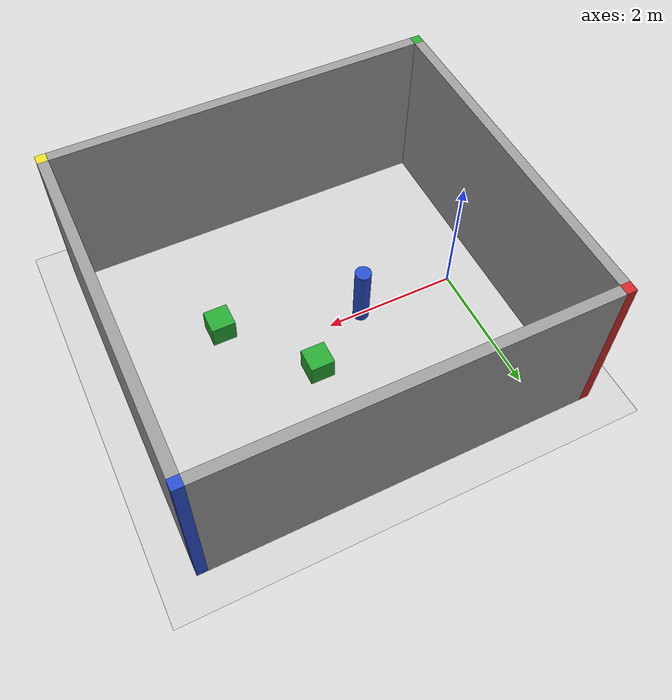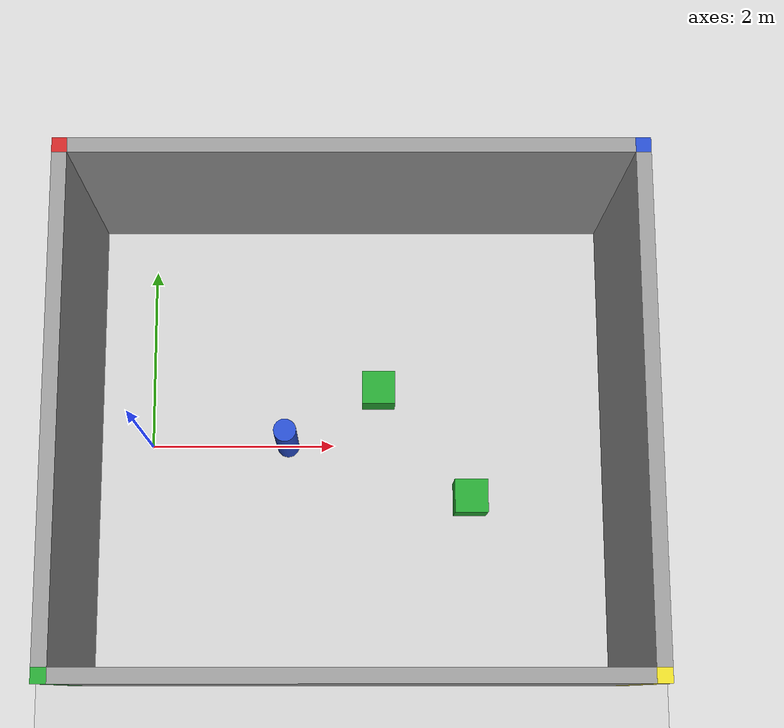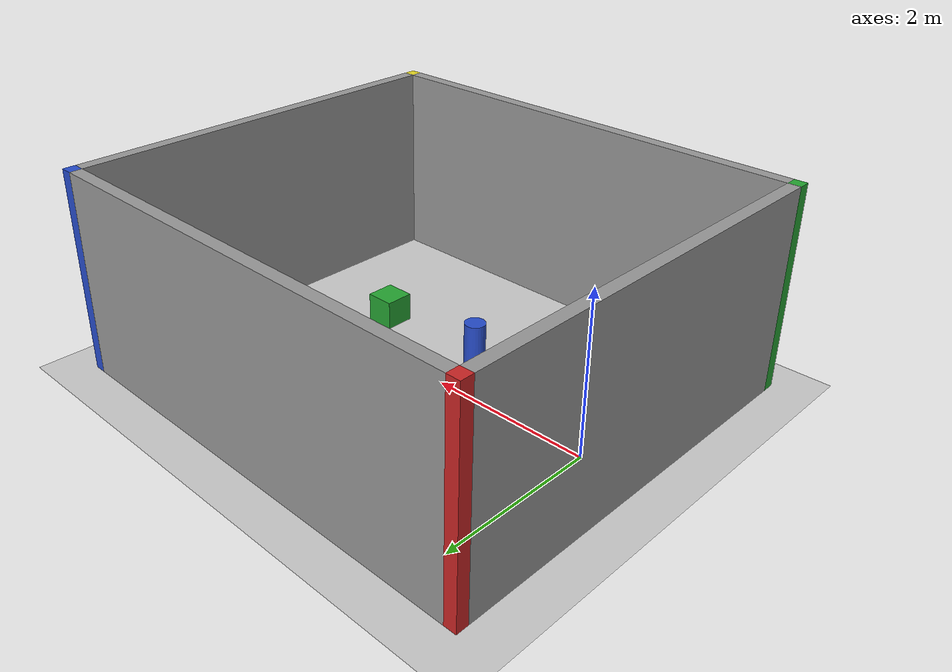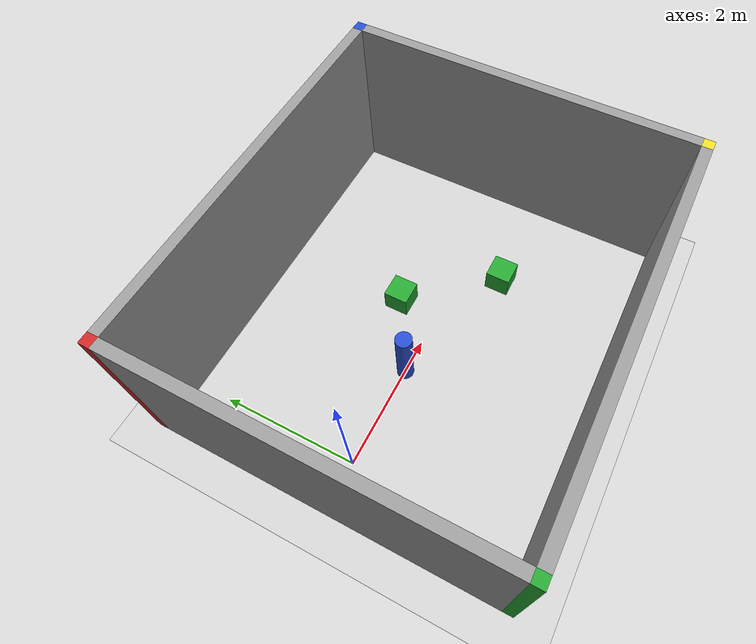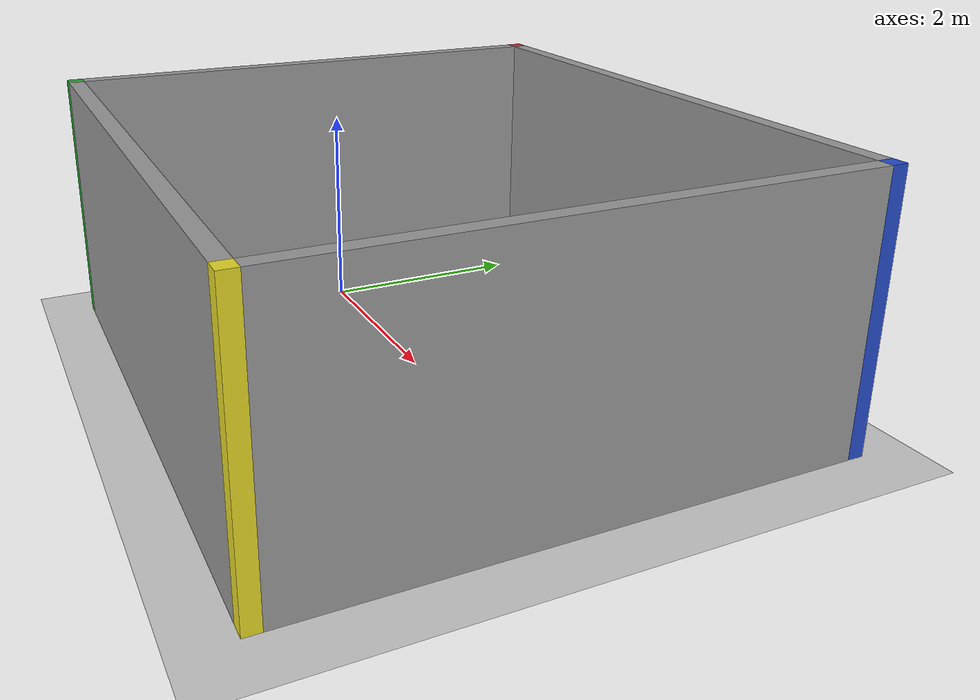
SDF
<sdf version='1.7'>
  <world name='default'>
    <light name='sun' type='directional'>
      <cast_shadows>1</cast_shadows>
      <pose>0 0 10 0 -0 0</pose>
      <diffuse>0.8 0.8 0.8 1</diffuse>
      <specular>0.2 0.2 0.2 1</specular>
      <attenuation>
        <range>1000</range>
        <constant>0.9</constant>
        <linear>0.01</linear>
        <quadratic>0.001</quadratic>
      </attenuation>
      <direction>-0.5 0.1 -0.9</direction>
      <spot>
        <inner_angle>0</inner_angle>
        <outer_angle>0</outer_angle>
        <falloff>0</falloff>
      </spot>
    </light>
    <model name='ground_plane'>
      <static>1</static>
      <link name='link'>
        <collision name='collision'>
          <geometry>
            <plane>
              <normal>0 0 1</normal>
              <size>100 100</size>
            </plane>
          </geometry>
          <surface>
            <contact>
              <collide_bitmask>65535</collide_bitmask>
              <ode/>
            </contact>
            <friction>
              <ode>
                <mu>100</mu>
                <mu2>50</mu2>
              </ode>
              <torsional>
                <ode/>
              </torsional>
            </friction>
            <bounce/>
          </surface>
          <max_contacts>10</max_contacts>
        </collision>
        <visual name='visual'>
          <cast_shadows>0</cast_shadows>
          <geometry>
            <plane>
              <normal>0 0 1</normal>
              <size>100 100</size>
            </plane>
          </geometry>
          <material>
            <script>
              <uri>file://media/materials/scripts/gazebo.material</uri>
              <name>Gazebo/FlatBeige</name>
            </script>
          </material>
        </visual>
        <self_collide>0</self_collide>
        <enable_wind>0</enable_wind>
        <kinematic>0</kinematic>
      </link>
    </model>
    <gravity>0 0 -9.8</gravity>
    <magnetic_field>6e-06 2.3e-05 -4.2e-05</magnetic_field>
    <atmosphere type='adiabatic'/>
    <physics type='ode'>
      <max_step_size>0.001</max_step_size>
      <real_time_factor>1</real_time_factor>
      <real_time_update_rate>1000</real_time_update_rate>
    </physics>
    <scene>
      <ambient>0.4 0.4 0.4 1</ambient>
      <background>0.7 0.7 0.7 1</background>
      <shadows>1</shadows>
    </scene>
    <wind/>
    <spherical_coordinates>
      <surface_model>EARTH_WGS84</surface_model>
      <latitude_deg>0</latitude_deg>
      <longitude_deg>0</longitude_deg>
      <elevation>0</elevation>
      <heading_deg>0</heading_deg>
    </spherical_coordinates>
    <model name='boundary_walls'>
      <static>1</static>

      <!-- 底边墙 (y = 2.55) -->
      <link name='Wall_Bottom'>
        <pose>2.2 2.55 0 0 0 0</pose>
        <collision name='collision'>
          <geometry>
            <box>
              <size>5.55 0.15 2.5</size>
            </box>
          </geometry>
          <pose>0 0 1.25 0 0 0</pose>
        </collision>
        <visual name='visual'>
          <pose>0 0 1.25 0 0 0</pose>
          <geometry>
            <box>
              <size>5.55 0.15 2.5</size>
            </box>
          </geometry>
          <material>
            <script>
              <uri>file://media/materials/scripts/gazebo.material</uri>
              <name>Gazebo/Grey</name>
            </script>
          </material>
        </visual>
      </link>

      <!-- 顶边墙 (y = -2.55) -->
      <link name='Wall_Top'>
        <pose>2.2 -2.55 0 0 0 0</pose>
        <collision name='collision'>
          <geometry>
            <box>
              <size>5.55 0.15 2.5</size>
            </box>
          </geometry>
          <pose>0 0 1.25 0 0 0</pose>
        </collision>
        <visual name='visual'>
          <pose>0 0 1.25 0 0 0</pose>
          <geometry>
            <box>
              <size>5.55 0.15 2.5</size>
            </box>
          </geometry>
          <material>
            <script>
              <uri>file://media/materials/scripts/gazebo.material</uri>
              <name>Gazebo/Grey</name>
            </script>
          </material>
        </visual>
      </link>

      <!-- 左边墙 (x = -1.4) -->
      <link name='Wall_Left'>
        <pose>-0.65 0.0 0 0 0 1.5708</pose>
        <collision name='collision'>
          <geometry>
            <box>
              <size>4.95 0.15 2.5</size>
            </box>
          </geometry>
          <pose>0 0 1.25 0 0 0</pose>
        </collision>
        <visual name='visual'>
          <pose>0 0 1.25 0 0 0</pose>
          <geometry>
            <box>
              <size>4.95 0.15 2.5</size>
            </box>
          </geometry>
          <material>
            <script>
              <uri>file://media/materials/scripts/gazebo.material</uri>
              <name>Gazebo/Grey</name>
            </script>
          </material>
        </visual>
      </link>

      <!-- 右边墙 (x = 4.3) -->
      <link name='Wall_Right'>
        <pose>5.05 0.0 0 0 0 1.5708</pose>
        <collision name='collision'>
          <geometry>
            <box>
              <size>4.95 0.15 2.5</size>
            </box>
          </geometry>
          <pose>0 0 1.25 0 0 0</pose>
        </collision>
        <visual name='visual'>
          <pose>0 0 1.25 0 0 0</pose>
          <geometry>
            <box>
              <size>4.95 0.15 2.5</size>
            </box>
          </geometry>
          <material>
            <script>
              <uri>file://media/materials/scripts/gazebo.material</uri>
              <name>Gazebo/Grey</name>
            </script>
          </material>
        </visual>
      </link>

      <!-- 左上角柱体 -->
      <link name='Corner_BottomLeft'>
        <pose>-0.65 2.55 0 0 0 0</pose>
        <collision name='collision'>
          <geometry>
            <box>
              <size>0.15 0.15 2.5</size>
            </box>
          </geometry>
          <pose>0 0 1.25 0 0 0</pose>
        </collision>
        <visual name='visual'>
          <pose>0 0 1.25 0 0 0</pose>
          <geometry>
            <box>
              <size>0.15 0.15 2.5</size>
            </box>
          </geometry>
          <material>
            <script>
              <uri>file://media/materials/scripts/gazebo.material</uri>
              <name>Gazebo/Red</name>
            </script>
          </material>
        </visual>
      </link>

      <!-- 右上角柱体 -->
      <link name='Corner_BottomRight'>
        <pose>5.05 2.55 0 0 0 0</pose>
        <collision name='collision'>
          <geometry>
            <box>
              <size>0.15 0.15 2.5</size>
            </box>
          </geometry>
          <pose>0 0 1.25 0 0 0</pose>
        </collision>
        <visual name='visual'>
          <pose>0 0 1.25 0 0 0</pose>
          <geometry>
            <box>
              <size>0.15 0.15 2.5</size>
            </box>
          </geometry>
          <material>
            <script>
              <uri>file://media/materials/scripts/gazebo.material</uri>
              <name>Gazebo/Blue</name>
            </script>
          </material>
        </visual>
      </link>

      <!-- 左下角柱体 -->
      <link name='Corner_TopLeft'>
        <pose>-0.65 -2.55 0 0 0 0</pose>
        <collision name='collision'>
          <geometry>
            <box>
              <size>0.15 0.15 2.5</size>
            </box>
          </geometry>
          <pose>0 0 1.25 0 0 0</pose>
        </collision>
        <visual name='visual'>
          <pose>0 0 1.25 0 0 0</pose>
          <geometry>
            <box>
              <size>0.15 0.15 2.5</size>
            </box>
          </geometry>
          <material>
            <script>
              <uri>file://media/materials/scripts/gazebo.material</uri>
              <name>Gazebo/Green</name>
            </script>
          </material>
        </visual>
      </link>

      <!-- 右下角柱体 -->
      <link name='Corner_TopRight'>
        <pose>5.05 -2.55 0 0 0 0</pose>
        <collision name='collision'>
          <geometry>
            <box>
              <size>0.15 0.15 2.5</size>
            </box>
          </geometry>
          <pose>0 0 1.25 0 0 0</pose>
        </collision>
        <visual name='visual'>
          <pose>0 0 1.25 0 0 0</pose>
          <geometry>
            <box>
              <size>0.15 0.15 2.5</size>
            </box>
          </geometry>
          <material>
            <script>
              <uri>file://media/materials/scripts/gazebo.material</uri>
              <name>Gazebo/Yellow</name>
            </script>
          </material>
        </visual>
      </link>
    </model>

    <model name='obs_circle'>
      <static>0</static>
      <pose>1.5 0.0 0.5 0 0 0</pose>
      <link name='link'>
        <pose>0 0 0 0 0 0</pose>
        <inertial>
          <mass>0.5</mass>
          <inertia>
            <ixx>0.001</ixx>
            <ixy>0</ixy>
            <ixz>0</ixz>
            <iyy>0.001</iyy>
            <iyz>0</iyz>
            <izz>0.001</izz>
          </inertia>
        </inertial>
        <kinematic>1</kinematic>
        <collision name='collision'>
          <geometry>
            <cylinder>
              <radius>0.12</radius>
              <length>1.0</length>
            </cylinder>
          </geometry>
        </collision>
        <visual name='visual'>
          <geometry>
            <cylinder>
              <radius>0.12</radius>
              <length>1.0</length>
            </cylinder>
          </geometry>
          <material>
            <script>
              <uri>file://media/materials/scripts/gazebo.material</uri>
              <name>Gazebo/Blue</name>
            </script>
          </material>
        </visual>
      </link>
      <plugin name='obs_circle_planar_move' filename='libgazebo_ros_planar_move.so'>
        <robotNamespace>/obs_circle</robotNamespace>
        <robotBaseFrame>link</robotBaseFrame>
        <commandTopic>cmd_vel</commandTopic>
        <odometryTopic>odom</odometryTopic>
        <odometryFrame>world</odometryFrame>
        <odometryRate>50</odometryRate>
        <cmdTimeout>0.5</cmdTimeout>
        <bodyName>link</bodyName>
      </plugin>
    </model>

    <model name='obs_square1'>
      <static>0</static>
      <pose>2.5 0.6 0.18 0 0 0</pose>
      <link name='link'>
        <pose>0 0 0 0 0 0</pose>
        <inertial>
          <mass>0.5</mass>
          <inertia>
            <ixx>0.001</ixx>
            <ixy>0</ixy>
            <ixz>0</ixz>
            <iyy>0.001</iyy>
            <iyz>0</iyz>
            <izz>0.001</izz>
          </inertia>
        </inertial>
        <kinematic>1</kinematic>
        <collision name='collision'>
          <geometry>
            <box>
              <size>0.36 0.36 0.36</size>
            </box>
          </geometry>
        </collision>
        <visual name='visual'>
          <geometry>
            <box>
              <size>0.36 0.36 0.36</size>
            </box>
          </geometry>
          <material>
            <script>
              <uri>file://media/materials/scripts/gazebo.material</uri>
              <name>Gazebo/Green</name>
            </script>
          </material>
        </visual>
      </link>
      <plugin name='obs_square1_planar_move' filename='libgazebo_ros_planar_move.so'>
        <robotNamespace>/obs_square1</robotNamespace>
        <robotBaseFrame>link</robotBaseFrame>
        <commandTopic>cmd_vel</commandTopic>
        <odometryTopic>odom</odometryTopic>
        <odometryFrame>world</odometryFrame>
        <odometryRate>50</odometryRate>
        <cmdTimeout>0.5</cmdTimeout>
        <bodyName>link</bodyName>
      </plugin>
    </model>

    <model name='obs_square2'>
      <static>0</static>
      <pose>3.5 -0.6 0.18 0 0 0</pose>
      <link name='link'>
        <pose>0 0 0 0 0 0</pose>
        <inertial>
          <mass>0.5</mass>
          <inertia>
            <ixx>0.001</ixx>
            <ixy>0</ixy>
            <ixz>0</ixz>
            <iyy>0.001</iyy>
            <iyz>0</iyz>
            <izz>0.001</izz>
          </inertia>
        </inertial>
        <kinematic>1</kinematic>
        <collision name='collision'>
          <geometry>
            <box>
              <size>0.36 0.36 0.36</size>
            </box>
          </geometry>
        </collision>
        <visual name='visual'>
          <geometry>
            <box>
              <size>0.36 0.36 0.36</size>
            </box>
          </geometry>
          <material>
            <script>
              <uri>file://media/materials/scripts/gazebo.material</uri>
              <name>Gazebo/Green</name>
            </script>
          </material>
        </visual>
      </link>
      <plugin name='obs_square2_planar_move' filename='libgazebo_ros_planar_move.so'>
        <robotNamespace>/obs_square2</robotNamespace>
        <robotBaseFrame>link</robotBaseFrame>
        <commandTopic>cmd_vel</commandTopic>
        <odometryTopic>odom</odometryTopic>
        <odometryFrame>world</odometryFrame>
        <odometryRate>50</odometryRate>
        <cmdTimeout>0.5</cmdTimeout>
        <bodyName>link</bodyName>
      </plugin>
    </model>
    <gui fullscreen='0'>
      <camera name='user_camera'>
        <pose>0.959603 -0.417519 13.7824 3.7e-05 1.5698 1.52605</pose>
        <view_controller>orbit</view_controller>
        <projection_type>perspective</projection_type>
      </camera>
    </gui>
  </world>
</sdf>
